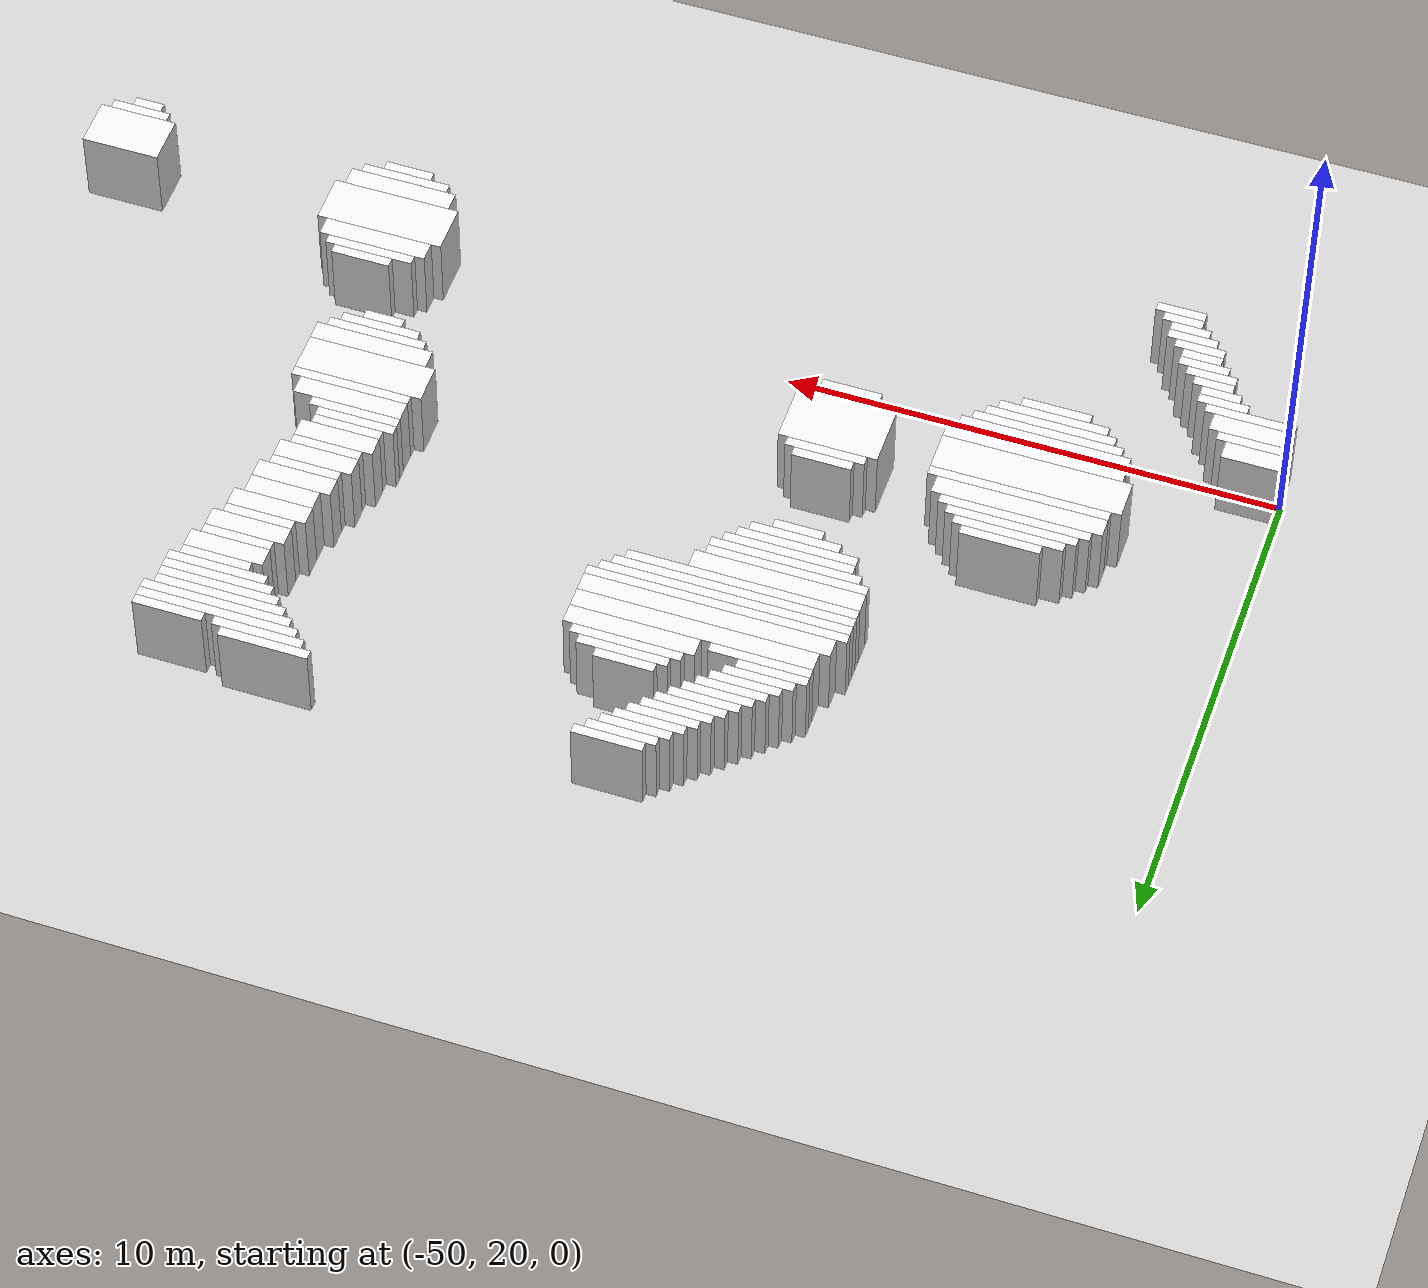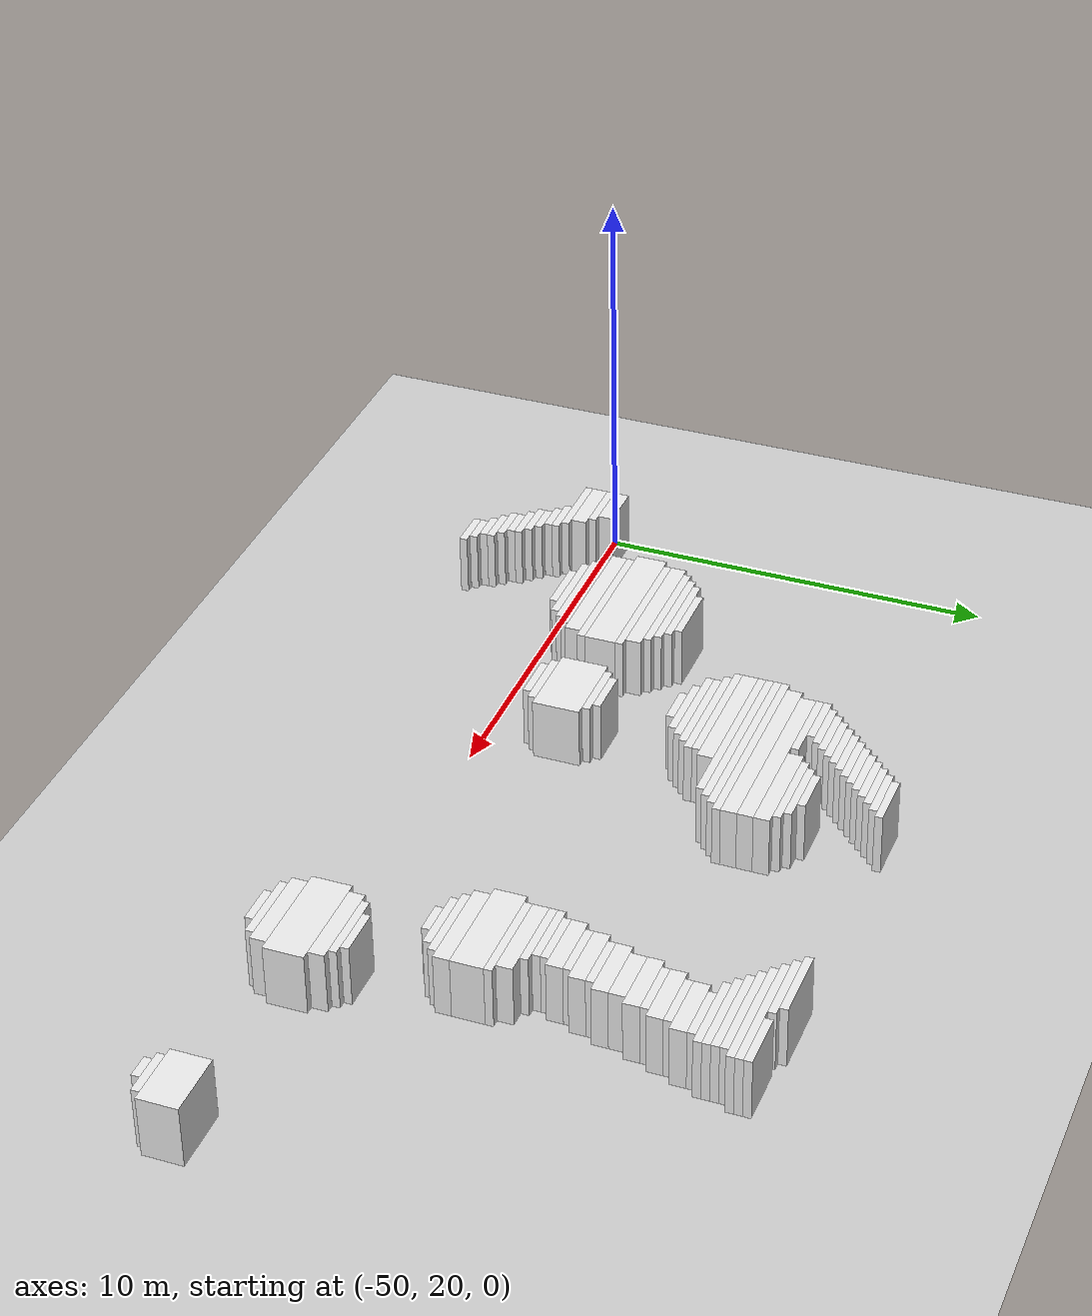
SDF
<sdf version="1.7">
 <world name="default">
  <model name="ground_plane">
   <static>1</static>
   <link name="link">
    <collision name="collision">
     <geometry><plane><normal>0 0 1</normal><size>120 120</size></plane></geometry>
    </collision>
    <visual name="visual">
     <geometry><plane><normal>0 0 1</normal><size>120 120</size></plane></geometry>
     <material>
      <script><uri>file://media/materials/scripts/gazebo.material</uri><name>Gazebo/Grey</name></script>
     </material>
    </visual>
   </link>
  </model>
  <model name="random_complex_02_model">
   <static>1</static>
   <link name="obs_751">
    <pose>-39.9000 30.5000 0.8000 0 0 0</pose>
    <collision name="obs_751_col"><geometry><box><size>1.4000 0.2000 1.6000</size></box></geometry></collision>
    <visual name="obs_751_vis">
     <geometry><box><size>1.4000 0.2000 1.6000</size></box></geometry>
     <material>
      <script><uri>file://media/materials/scripts/gazebo.material</uri><name>Gazebo/White</name></script>
     </material>
    </visual>
   </link>
   <link name="obs_752">
    <pose>-33.1000 30.5000 0.8000 0 0 0</pose>
    <collision name="obs_752_col"><geometry><box><size>1.8000 0.2000 1.6000</size></box></geometry></collision>
    <visual name="obs_752_vis">
     <geometry><box><size>1.8000 0.2000 1.6000</size></box></geometry>
     <material>
      <script><uri>file://media/materials/scripts/gazebo.material</uri><name>Gazebo/White</name></script>
     </material>
    </visual>
   </link>
   <link name="obs_759">
    <pose>-40.1000 30.3000 0.8000 0 0 0</pose>
    <collision name="obs_759_col"><geometry><box><size>1.4000 0.2000 1.6000</size></box></geometry></collision>
    <visual name="obs_759_vis">
     <geometry><box><size>1.4000 0.2000 1.6000</size></box></geometry>
     <material>
      <script><uri>file://media/materials/scripts/gazebo.material</uri><name>Gazebo/White</name></script>
     </material>
    </visual>
   </link>
   <link name="obs_760">
    <pose>-32.9000 30.3000 0.8000 0 0 0</pose>
    <collision name="obs_760_col"><geometry><box><size>1.8000 0.2000 1.6000</size></box></geometry></collision>
    <visual name="obs_760_vis">
     <geometry><box><size>1.8000 0.2000 1.6000</size></box></geometry>
     <material>
      <script><uri>file://media/materials/scripts/gazebo.material</uri><name>Gazebo/White</name></script>
     </material>
    </visual>
   </link>
   <link name="obs_761">
    <pose>-31.1000 30.3000 0.8000 0 0 0</pose>
    <collision name="obs_761_col"><geometry><box><size>1.4000 0.2000 1.6000</size></box></geometry></collision>
    <visual name="obs_761_vis">
     <geometry><box><size>1.4000 0.2000 1.6000</size></box></geometry>
     <material>
      <script><uri>file://media/materials/scripts/gazebo.material</uri><name>Gazebo/White</name></script>
     </material>
    </visual>
   </link>
   <link name="obs_768">
    <pose>-40.3000 30.1000 0.8000 0 0 0</pose>
    <collision name="obs_768_col"><geometry><box><size>1.4000 0.2000 1.6000</size></box></geometry></collision>
    <visual name="obs_768_vis">
     <geometry><box><size>1.4000 0.2000 1.6000</size></box></geometry>
     <material>
      <script><uri>file://media/materials/scripts/gazebo.material</uri><name>Gazebo/White</name></script>
     </material>
    </visual>
   </link>
   <link name="obs_769">
    <pose>-32.0000 30.1000 0.8000 0 0 0</pose>
    <collision name="obs_769_col"><geometry><box><size>3.2000 0.2000 1.6000</size></box></geometry></collision>
    <visual name="obs_769_vis">
     <geometry><box><size>3.2000 0.2000 1.6000</size></box></geometry>
     <material>
      <script><uri>file://media/materials/scripts/gazebo.material</uri><name>Gazebo/White</name></script>
     </material>
    </visual>
   </link>
   <link name="obs_773">
    <pose>-40.5000 29.9000 0.8000 0 0 0</pose>
    <collision name="obs_773_col"><geometry><box><size>1.4000 0.2000 1.6000</size></box></geometry></collision>
    <visual name="obs_773_vis">
     <geometry><box><size>1.4000 0.2000 1.6000</size></box></geometry>
     <material>
      <script><uri>file://media/materials/scripts/gazebo.material</uri><name>Gazebo/White</name></script>
     </material>
    </visual>
   </link>
   <link name="obs_774">
    <pose>-31.9000 29.9000 0.8000 0 0 0</pose>
    <collision name="obs_774_col"><geometry><box><size>3.0000 0.2000 1.6000</size></box></geometry></collision>
    <visual name="obs_774_vis">
     <geometry><box><size>3.0000 0.2000 1.6000</size></box></geometry>
     <material>
      <script><uri>file://media/materials/scripts/gazebo.material</uri><name>Gazebo/White</name></script>
     </material>
    </visual>
   </link>
   <link name="obs_785">
    <pose>-40.7000 29.7000 0.8000 0 0 0</pose>
    <collision name="obs_785_col"><geometry><box><size>1.4000 0.2000 1.6000</size></box></geometry></collision>
    <visual name="obs_785_vis">
     <geometry><box><size>1.4000 0.2000 1.6000</size></box></geometry>
     <material>
      <script><uri>file://media/materials/scripts/gazebo.material</uri><name>Gazebo/White</name></script>
     </material>
    </visual>
   </link>
   <link name="obs_786">
    <pose>-31.9000 29.7000 0.8000 0 0 0</pose>
    <collision name="obs_786_col"><geometry><box><size>2.6000 0.2000 1.6000</size></box></geometry></collision>
    <visual name="obs_786_vis">
     <geometry><box><size>2.6000 0.2000 1.6000</size></box></geometry>
     <material>
      <script><uri>file://media/materials/scripts/gazebo.material</uri><name>Gazebo/White</name></script>
     </material>
    </visual>
   </link>
   <link name="obs_793">
    <pose>-40.9000 29.5000 0.8000 0 0 0</pose>
    <collision name="obs_793_col"><geometry><box><size>1.4000 0.2000 1.6000</size></box></geometry></collision>
    <visual name="obs_793_vis">
     <geometry><box><size>1.4000 0.2000 1.6000</size></box></geometry>
     <material>
      <script><uri>file://media/materials/scripts/gazebo.material</uri><name>Gazebo/White</name></script>
     </material>
    </visual>
   </link>
   <link name="obs_794">
    <pose>-31.8000 29.5000 0.8000 0 0 0</pose>
    <collision name="obs_794_col"><geometry><box><size>2.4000 0.2000 1.6000</size></box></geometry></collision>
    <visual name="obs_794_vis">
     <geometry><box><size>2.4000 0.2000 1.6000</size></box></geometry>
     <material>
      <script><uri>file://media/materials/scripts/gazebo.material</uri><name>Gazebo/White</name></script>
     </material>
    </visual>
   </link>
   <link name="obs_801">
    <pose>-41.1000 29.3000 0.8000 0 0 0</pose>
    <collision name="obs_801_col"><geometry><box><size>1.4000 0.2000 1.6000</size></box></geometry></collision>
    <visual name="obs_801_vis">
     <geometry><box><size>1.4000 0.2000 1.6000</size></box></geometry>
     <material>
      <script><uri>file://media/materials/scripts/gazebo.material</uri><name>Gazebo/White</name></script>
     </material>
    </visual>
   </link>
   <link name="obs_802">
    <pose>-31.7000 29.3000 0.8000 0 0 0</pose>
    <collision name="obs_802_col"><geometry><box><size>2.2000 0.2000 1.6000</size></box></geometry></collision>
    <visual name="obs_802_vis">
     <geometry><box><size>2.2000 0.2000 1.6000</size></box></geometry>
     <material>
      <script><uri>file://media/materials/scripts/gazebo.material</uri><name>Gazebo/White</name></script>
     </material>
    </visual>
   </link>
   <link name="obs_809">
    <pose>-41.3000 29.1000 0.8000 0 0 0</pose>
    <collision name="obs_809_col"><geometry><box><size>1.4000 0.2000 1.6000</size></box></geometry></collision>
    <visual name="obs_809_vis">
     <geometry><box><size>1.4000 0.2000 1.6000</size></box></geometry>
     <material>
      <script><uri>file://media/materials/scripts/gazebo.material</uri><name>Gazebo/White</name></script>
     </material>
    </visual>
   </link>
   <link name="obs_810">
    <pose>-31.6000 29.1000 0.8000 0 0 0</pose>
    <collision name="obs_810_col"><geometry><box><size>2.0000 0.2000 1.6000</size></box></geometry></collision>
    <visual name="obs_810_vis">
     <geometry><box><size>2.0000 0.2000 1.6000</size></box></geometry>
     <material>
      <script><uri>file://media/materials/scripts/gazebo.material</uri><name>Gazebo/White</name></script>
     </material>
    </visual>
   </link>
   <link name="obs_815">
    <pose>-41.5000 28.9000 0.8000 0 0 0</pose>
    <collision name="obs_815_col"><geometry><box><size>1.4000 0.2000 1.6000</size></box></geometry></collision>
    <visual name="obs_815_vis">
     <geometry><box><size>1.4000 0.2000 1.6000</size></box></geometry>
     <material>
      <script><uri>file://media/materials/scripts/gazebo.material</uri><name>Gazebo/White</name></script>
     </material>
    </visual>
   </link>
   <link name="obs_816">
    <pose>-31.5000 28.9000 0.8000 0 0 0</pose>
    <collision name="obs_816_col"><geometry><box><size>1.4000 0.2000 1.6000</size></box></geometry></collision>
    <visual name="obs_816_vis">
     <geometry><box><size>1.4000 0.2000 1.6000</size></box></geometry>
     <material>
      <script><uri>file://media/materials/scripts/gazebo.material</uri><name>Gazebo/White</name></script>
     </material>
    </visual>
   </link>
   <link name="obs_826">
    <pose>-41.7000 28.7000 0.8000 0 0 0</pose>
    <collision name="obs_826_col"><geometry><box><size>1.4000 0.2000 1.6000</size></box></geometry></collision>
    <visual name="obs_826_vis">
     <geometry><box><size>1.4000 0.2000 1.6000</size></box></geometry>
     <material>
      <script><uri>file://media/materials/scripts/gazebo.material</uri><name>Gazebo/White</name></script>
     </material>
    </visual>
   </link>
   <link name="obs_827">
    <pose>-39.6000 28.7000 0.8000 0 0 0</pose>
    <collision name="obs_827_col"><geometry><box><size>1.2000 0.2000 1.6000</size></box></geometry></collision>
    <visual name="obs_827_vis">
     <geometry><box><size>1.2000 0.2000 1.6000</size></box></geometry>
     <material>
      <script><uri>file://media/materials/scripts/gazebo.material</uri><name>Gazebo/White</name></script>
     </material>
    </visual>
   </link>
   <link name="obs_836">
    <pose>-31.6000 28.6000 0.8000 0 0 0</pose>
    <collision name="obs_836_col"><geometry><box><size>1.6000 0.4000 1.6000</size></box></geometry></collision>
    <visual name="obs_836_vis">
     <geometry><box><size>1.6000 0.4000 1.6000</size></box></geometry>
     <material>
      <script><uri>file://media/materials/scripts/gazebo.material</uri><name>Gazebo/White</name></script>
     </material>
    </visual>
   </link>
   <link name="obs_838">
    <pose>-41.9000 28.5000 0.8000 0 0 0</pose>
    <collision name="obs_838_col"><geometry><box><size>1.4000 0.2000 1.6000</size></box></geometry></collision>
    <visual name="obs_838_vis">
     <geometry><box><size>1.4000 0.2000 1.6000</size></box></geometry>
     <material>
      <script><uri>file://media/materials/scripts/gazebo.material</uri><name>Gazebo/White</name></script>
     </material>
    </visual>
   </link>
   <link name="obs_839">
    <pose>-39.5000 28.5000 0.8000 0 0 0</pose>
    <collision name="obs_839_col"><geometry><box><size>1.8000 0.2000 1.6000</size></box></geometry></collision>
    <visual name="obs_839_vis">
     <geometry><box><size>1.8000 0.2000 1.6000</size></box></geometry>
     <material>
      <script><uri>file://media/materials/scripts/gazebo.material</uri><name>Gazebo/White</name></script>
     </material>
    </visual>
   </link>
   <link name="obs_847">
    <pose>-42.1000 28.3000 0.8000 0 0 0</pose>
    <collision name="obs_847_col"><geometry><box><size>1.4000 0.2000 1.6000</size></box></geometry></collision>
    <visual name="obs_847_vis">
     <geometry><box><size>1.4000 0.2000 1.6000</size></box></geometry>
     <material>
      <script><uri>file://media/materials/scripts/gazebo.material</uri><name>Gazebo/White</name></script>
     </material>
    </visual>
   </link>
   <link name="obs_848">
    <pose>-39.5000 28.3000 0.8000 0 0 0</pose>
    <collision name="obs_848_col"><geometry><box><size>2.2000 0.2000 1.6000</size></box></geometry></collision>
    <visual name="obs_848_vis">
     <geometry><box><size>2.2000 0.2000 1.6000</size></box></geometry>
     <material>
      <script><uri>file://media/materials/scripts/gazebo.material</uri><name>Gazebo/White</name></script>
     </material>
    </visual>
   </link>
   <link name="obs_849">
    <pose>-31.7000 28.3000 0.8000 0 0 0</pose>
    <collision name="obs_849_col"><geometry><box><size>1.4000 0.2000 1.6000</size></box></geometry></collision>
    <visual name="obs_849_vis">
     <geometry><box><size>1.4000 0.2000 1.6000</size></box></geometry>
     <material>
      <script><uri>file://media/materials/scripts/gazebo.material</uri><name>Gazebo/White</name></script>
     </material>
    </visual>
   </link>
   <link name="obs_858">
    <pose>-42.3000 28.1000 0.8000 0 0 0</pose>
    <collision name="obs_858_col"><geometry><box><size>1.4000 0.2000 1.6000</size></box></geometry></collision>
    <visual name="obs_858_vis">
     <geometry><box><size>1.4000 0.2000 1.6000</size></box></geometry>
     <material>
      <script><uri>file://media/materials/scripts/gazebo.material</uri><name>Gazebo/White</name></script>
     </material>
    </visual>
   </link>
   <link name="obs_865">
    <pose>-39.5000 28.0000 0.8000 0 0 0</pose>
    <collision name="obs_865_col"><geometry><box><size>2.6000 0.4000 1.6000</size></box></geometry></collision>
    <visual name="obs_865_vis">
     <geometry><box><size>2.6000 0.4000 1.6000</size></box></geometry>
     <material>
      <script><uri>file://media/materials/scripts/gazebo.material</uri><name>Gazebo/White</name></script>
     </material>
    </visual>
   </link>
   <link name="obs_866">
    <pose>-31.8000 28.0000 0.8000 0 0 0</pose>
    <collision name="obs_866_col"><geometry><box><size>1.6000 0.4000 1.6000</size></box></geometry></collision>
    <visual name="obs_866_vis">
     <geometry><box><size>1.6000 0.4000 1.6000</size></box></geometry>
     <material>
      <script><uri>file://media/materials/scripts/gazebo.material</uri><name>Gazebo/White</name></script>
     </material>
    </visual>
   </link>
   <link name="obs_868">
    <pose>-42.0000 27.9000 0.8000 0 0 0</pose>
    <collision name="obs_868_col"><geometry><box><size>2.0000 0.2000 1.6000</size></box></geometry></collision>
    <visual name="obs_868_vis">
     <geometry><box><size>2.0000 0.2000 1.6000</size></box></geometry>
     <material>
      <script><uri>file://media/materials/scripts/gazebo.material</uri><name>Gazebo/White</name></script>
     </material>
    </visual>
   </link>
   <link name="obs_878">
    <pose>-31.9000 27.7000 0.8000 0 0 0</pose>
    <collision name="obs_878_col"><geometry><box><size>1.4000 0.2000 1.6000</size></box></geometry></collision>
    <visual name="obs_878_vis">
     <geometry><box><size>1.4000 0.2000 1.6000</size></box></geometry>
     <material>
      <script><uri>file://media/materials/scripts/gazebo.material</uri><name>Gazebo/White</name></script>
     </material>
    </visual>
   </link>
   <link name="obs_886">
    <pose>-40.6000 27.6000 0.8000 0 0 0</pose>
    <collision name="obs_886_col"><geometry><box><size>4.8000 0.4000 1.6000</size></box></geometry></collision>
    <visual name="obs_886_vis">
     <geometry><box><size>4.8000 0.4000 1.6000</size></box></geometry>
     <material>
      <script><uri>file://media/materials/scripts/gazebo.material</uri><name>Gazebo/White</name></script>
     </material>
    </visual>
   </link>
   <link name="obs_892">
    <pose>-32.0000 27.4000 0.8000 0 0 0</pose>
    <collision name="obs_892_col"><geometry><box><size>1.6000 0.4000 1.6000</size></box></geometry></collision>
    <visual name="obs_892_vis">
     <geometry><box><size>1.6000 0.4000 1.6000</size></box></geometry>
     <material>
      <script><uri>file://media/materials/scripts/gazebo.material</uri><name>Gazebo/White</name></script>
     </material>
    </visual>
   </link>
   <link name="obs_898">
    <pose>-40.7000 27.2000 0.8000 0 0 0</pose>
    <collision name="obs_898_col"><geometry><box><size>5.0000 0.4000 1.6000</size></box></geometry></collision>
    <visual name="obs_898_vis">
     <geometry><box><size>5.0000 0.4000 1.6000</size></box></geometry>
     <material>
      <script><uri>file://media/materials/scripts/gazebo.material</uri><name>Gazebo/White</name></script>
     </material>
    </visual>
   </link>
   <link name="obs_905">
    <pose>-32.1000 27.0000 0.8000 0 0 0</pose>
    <collision name="obs_905_col"><geometry><box><size>1.4000 0.4000 1.6000</size></box></geometry></collision>
    <visual name="obs_905_vis">
     <geometry><box><size>1.4000 0.4000 1.6000</size></box></geometry>
     <material>
      <script><uri>file://media/materials/scripts/gazebo.material</uri><name>Gazebo/White</name></script>
     </material>
    </visual>
   </link>
   <link name="obs_908">
    <pose>-40.8000 26.9000 0.8000 0 0 0</pose>
    <collision name="obs_908_col"><geometry><box><size>5.2000 0.2000 1.6000</size></box></geometry></collision>
    <visual name="obs_908_vis">
     <geometry><box><size>5.2000 0.2000 1.6000</size></box></geometry>
     <material>
      <script><uri>file://media/materials/scripts/gazebo.material</uri><name>Gazebo/White</name></script>
     </material>
    </visual>
   </link>
   <link name="obs_915">
    <pose>-40.9000 26.7000 0.8000 0 0 0</pose>
    <collision name="obs_915_col"><geometry><box><size>5.0000 0.2000 1.6000</size></box></geometry></collision>
    <visual name="obs_915_vis">
     <geometry><box><size>5.0000 0.2000 1.6000</size></box></geometry>
     <material>
      <script><uri>file://media/materials/scripts/gazebo.material</uri><name>Gazebo/White</name></script>
     </material>
    </visual>
   </link>
   <link name="obs_921">
    <pose>-32.2000 26.6000 0.8000 0 0 0</pose>
    <collision name="obs_921_col"><geometry><box><size>1.6000 0.4000 1.6000</size></box></geometry></collision>
    <visual name="obs_921_vis">
     <geometry><box><size>1.6000 0.4000 1.6000</size></box></geometry>
     <material>
      <script><uri>file://media/materials/scripts/gazebo.material</uri><name>Gazebo/White</name></script>
     </material>
    </visual>
   </link>
   <link name="obs_923">
    <pose>-41.0000 26.5000 0.8000 0 0 0</pose>
    <collision name="obs_923_col"><geometry><box><size>4.8000 0.2000 1.6000</size></box></geometry></collision>
    <visual name="obs_923_vis">
     <geometry><box><size>4.8000 0.2000 1.6000</size></box></geometry>
     <material>
      <script><uri>file://media/materials/scripts/gazebo.material</uri><name>Gazebo/White</name></script>
     </material>
    </visual>
   </link>
   <link name="obs_929">
    <pose>-41.1000 26.3000 0.8000 0 0 0</pose>
    <collision name="obs_929_col"><geometry><box><size>4.6000 0.2000 1.6000</size></box></geometry></collision>
    <visual name="obs_929_vis">
     <geometry><box><size>4.6000 0.2000 1.6000</size></box></geometry>
     <material>
      <script><uri>file://media/materials/scripts/gazebo.material</uri><name>Gazebo/White</name></script>
     </material>
    </visual>
   </link>
   <link name="obs_930">
    <pose>-32.3000 26.3000 0.8000 0 0 0</pose>
    <collision name="obs_930_col"><geometry><box><size>1.4000 0.2000 1.6000</size></box></geometry></collision>
    <visual name="obs_930_vis">
     <geometry><box><size>1.4000 0.2000 1.6000</size></box></geometry>
     <material>
      <script><uri>file://media/materials/scripts/gazebo.material</uri><name>Gazebo/White</name></script>
     </material>
    </visual>
   </link>
   <link name="obs_943">
    <pose>-41.7000 26.0000 0.8000 0 0 0</pose>
    <collision name="obs_943_col"><geometry><box><size>3.4000 0.4000 1.6000</size></box></geometry></collision>
    <visual name="obs_943_vis">
     <geometry><box><size>3.4000 0.4000 1.6000</size></box></geometry>
     <material>
      <script><uri>file://media/materials/scripts/gazebo.material</uri><name>Gazebo/White</name></script>
     </material>
    </visual>
   </link>
   <link name="obs_944">
    <pose>-32.4000 26.0000 0.8000 0 0 0</pose>
    <collision name="obs_944_col"><geometry><box><size>1.6000 0.4000 1.6000</size></box></geometry></collision>
    <visual name="obs_944_vis">
     <geometry><box><size>1.6000 0.4000 1.6000</size></box></geometry>
     <material>
      <script><uri>file://media/materials/scripts/gazebo.material</uri><name>Gazebo/White</name></script>
     </material>
    </visual>
   </link>
   <link name="obs_954">
    <pose>-41.8000 25.7000 0.8000 0 0 0</pose>
    <collision name="obs_954_col"><geometry><box><size>3.2000 0.2000 1.6000</size></box></geometry></collision>
    <visual name="obs_954_vis">
     <geometry><box><size>3.2000 0.2000 1.6000</size></box></geometry>
     <material>
      <script><uri>file://media/materials/scripts/gazebo.material</uri><name>Gazebo/White</name></script>
     </material>
    </visual>
   </link>
   <link name="obs_955">
    <pose>-32.5000 25.7000 0.8000 0 0 0</pose>
    <collision name="obs_955_col"><geometry><box><size>1.4000 0.2000 1.6000</size></box></geometry></collision>
    <visual name="obs_955_vis">
     <geometry><box><size>1.4000 0.2000 1.6000</size></box></geometry>
     <material>
      <script><uri>file://media/materials/scripts/gazebo.material</uri><name>Gazebo/White</name></script>
     </material>
    </visual>
   </link>
   <link name="obs_962">
    <pose>-41.7000 25.5000 0.8000 0 0 0</pose>
    <collision name="obs_962_col"><geometry><box><size>3.0000 0.2000 1.6000</size></box></geometry></collision>
    <visual name="obs_962_vis">
     <geometry><box><size>3.0000 0.2000 1.6000</size></box></geometry>
     <material>
      <script><uri>file://media/materials/scripts/gazebo.material</uri><name>Gazebo/White</name></script>
     </material>
    </visual>
   </link>
   <link name="obs_971">
    <pose>-32.6000 25.4000 0.8000 0 0 0</pose>
    <collision name="obs_971_col"><geometry><box><size>1.6000 0.4000 1.6000</size></box></geometry></collision>
    <visual name="obs_971_vis">
     <geometry><box><size>1.6000 0.4000 1.6000</size></box></geometry>
     <material>
      <script><uri>file://media/materials/scripts/gazebo.material</uri><name>Gazebo/White</name></script>
     </material>
    </visual>
   </link>
   <link name="obs_972">
    <pose>-41.7000 25.3000 0.8000 0 0 0</pose>
    <collision name="obs_972_col"><geometry><box><size>2.6000 0.2000 1.6000</size></box></geometry></collision>
    <visual name="obs_972_vis">
     <geometry><box><size>2.6000 0.2000 1.6000</size></box></geometry>
     <material>
      <script><uri>file://media/materials/scripts/gazebo.material</uri><name>Gazebo/White</name></script>
     </material>
    </visual>
   </link>
   <link name="obs_978">
    <pose>-41.8000 25.1000 0.8000 0 0 0</pose>
    <collision name="obs_978_col"><geometry><box><size>2.4000 0.2000 1.6000</size></box></geometry></collision>
    <visual name="obs_978_vis">
     <geometry><box><size>2.4000 0.2000 1.6000</size></box></geometry>
     <material>
      <script><uri>file://media/materials/scripts/gazebo.material</uri><name>Gazebo/White</name></script>
     </material>
    </visual>
   </link>
   <link name="obs_979">
    <pose>-32.7000 25.1000 0.8000 0 0 0</pose>
    <collision name="obs_979_col"><geometry><box><size>1.4000 0.2000 1.6000</size></box></geometry></collision>
    <visual name="obs_979_vis">
     <geometry><box><size>1.4000 0.2000 1.6000</size></box></geometry>
     <material>
      <script><uri>file://media/materials/scripts/gazebo.material</uri><name>Gazebo/White</name></script>
     </material>
    </visual>
   </link>
   <link name="obs_985">
    <pose>-41.7000 24.9000 0.8000 0 0 0</pose>
    <collision name="obs_985_col"><geometry><box><size>1.8000 0.2000 1.6000</size></box></geometry></collision>
    <visual name="obs_985_vis">
     <geometry><box><size>1.8000 0.2000 1.6000</size></box></geometry>
     <material>
      <script><uri>file://media/materials/scripts/gazebo.material</uri><name>Gazebo/White</name></script>
     </material>
    </visual>
   </link>
   <link name="obs_986">
    <pose>-32.8000 24.9000 0.8000 0 0 0</pose>
    <collision name="obs_986_col"><geometry><box><size>1.6000 0.2000 1.6000</size></box></geometry></collision>
    <visual name="obs_986_vis">
     <geometry><box><size>1.6000 0.2000 1.6000</size></box></geometry>
     <material>
      <script><uri>file://media/materials/scripts/gazebo.material</uri><name>Gazebo/White</name></script>
     </material>
    </visual>
   </link>
   <link name="obs_996">
    <pose>-41.7000 24.7000 0.8000 0 0 0</pose>
    <collision name="obs_996_col"><geometry><box><size>1.0000 0.2000 1.6000</size></box></geometry></collision>
    <visual name="obs_996_vis">
     <geometry><box><size>1.0000 0.2000 1.6000</size></box></geometry>
     <material>
      <script><uri>file://media/materials/scripts/gazebo.material</uri><name>Gazebo/White</name></script>
     </material>
    </visual>
   </link>
   <link name="obs_997">
    <pose>-32.7000 24.7000 0.8000 0 0 0</pose>
    <collision name="obs_997_col"><geometry><box><size>1.8000 0.2000 1.6000</size></box></geometry></collision>
    <visual name="obs_997_vis">
     <geometry><box><size>1.8000 0.2000 1.6000</size></box></geometry>
     <material>
      <script><uri>file://media/materials/scripts/gazebo.material</uri><name>Gazebo/White</name></script>
     </material>
    </visual>
   </link>
   <link name="obs_1020">
    <pose>-32.5000 24.4000 0.8000 0 0 0</pose>
    <collision name="obs_1020_col"><geometry><box><size>2.2000 0.4000 1.6000</size></box></geometry></collision>
    <visual name="obs_1020_vis">
     <geometry><box><size>2.2000 0.4000 1.6000</size></box></geometry>
     <material>
      <script><uri>file://media/materials/scripts/gazebo.material</uri><name>Gazebo/White</name></script>
     </material>
    </visual>
   </link>
   <link name="obs_1035">
    <pose>-32.4000 24.1000 0.8000 0 0 0</pose>
    <collision name="obs_1035_col"><geometry><box><size>2.4000 0.2000 1.6000</size></box></geometry></collision>
    <visual name="obs_1035_vis">
     <geometry><box><size>2.4000 0.2000 1.6000</size></box></geometry>
     <material>
      <script><uri>file://media/materials/scripts/gazebo.material</uri><name>Gazebo/White</name></script>
     </material>
    </visual>
   </link>
   <link name="obs_1058">
    <pose>-45.4000 23.7000 0.8000 0 0 0</pose>
    <collision name="obs_1058_col"><geometry><box><size>1.6000 0.2000 1.6000</size></box></geometry></collision>
    <visual name="obs_1058_vis">
     <geometry><box><size>1.6000 0.2000 1.6000</size></box></geometry>
     <material>
      <script><uri>file://media/materials/scripts/gazebo.material</uri><name>Gazebo/White</name></script>
     </material>
    </visual>
   </link>
   <link name="obs_1070">
    <pose>-45.5000 23.5000 0.8000 0 0 0</pose>
    <collision name="obs_1070_col"><geometry><box><size>2.2000 0.2000 1.6000</size></box></geometry></collision>
    <visual name="obs_1070_vis">
     <geometry><box><size>2.2000 0.2000 1.6000</size></box></geometry>
     <material>
      <script><uri>file://media/materials/scripts/gazebo.material</uri><name>Gazebo/White</name></script>
     </material>
    </visual>
   </link>
   <link name="obs_1077">
    <pose>-32.5000 23.6000 0.8000 0 0 0</pose>
    <collision name="obs_1077_col"><geometry><box><size>2.6000 0.8000 1.6000</size></box></geometry></collision>
    <visual name="obs_1077_vis">
     <geometry><box><size>2.6000 0.8000 1.6000</size></box></geometry>
     <material>
      <script><uri>file://media/materials/scripts/gazebo.material</uri><name>Gazebo/White</name></script>
     </material>
    </visual>
   </link>
   <link name="obs_1079">
    <pose>-45.5000 23.3000 0.8000 0 0 0</pose>
    <collision name="obs_1079_col"><geometry><box><size>2.6000 0.2000 1.6000</size></box></geometry></collision>
    <visual name="obs_1079_vis">
     <geometry><box><size>2.6000 0.2000 1.6000</size></box></geometry>
     <material>
      <script><uri>file://media/materials/scripts/gazebo.material</uri><name>Gazebo/White</name></script>
     </material>
    </visual>
   </link>
   <link name="obs_1088">
    <pose>-45.5000 23.1000 0.8000 0 0 0</pose>
    <collision name="obs_1088_col"><geometry><box><size>3.0000 0.2000 1.6000</size></box></geometry></collision>
    <visual name="obs_1088_vis">
     <geometry><box><size>3.0000 0.2000 1.6000</size></box></geometry>
     <material>
      <script><uri>file://media/materials/scripts/gazebo.material</uri><name>Gazebo/White</name></script>
     </material>
    </visual>
   </link>
   <link name="obs_1094">
    <pose>-32.4000 23.0000 0.8000 0 0 0</pose>
    <collision name="obs_1094_col"><geometry><box><size>2.4000 0.4000 1.6000</size></box></geometry></collision>
    <visual name="obs_1094_vis">
     <geometry><box><size>2.4000 0.4000 1.6000</size></box></geometry>
     <material>
      <script><uri>file://media/materials/scripts/gazebo.material</uri><name>Gazebo/White</name></script>
     </material>
    </visual>
   </link>
   <link name="obs_1097">
    <pose>-41.6000 22.9000 0.8000 0 0 0</pose>
    <collision name="obs_1097_col"><geometry><box><size>1.2000 0.2000 1.6000</size></box></geometry></collision>
    <visual name="obs_1097_vis">
     <geometry><box><size>1.2000 0.2000 1.6000</size></box></geometry>
     <material>
      <script><uri>file://media/materials/scripts/gazebo.material</uri><name>Gazebo/White</name></script>
     </material>
    </visual>
   </link>
   <link name="obs_1105">
    <pose>-45.5000 22.8000 0.8000 0 0 0</pose>
    <collision name="obs_1105_col"><geometry><box><size>3.4000 0.4000 1.6000</size></box></geometry></collision>
    <visual name="obs_1105_vis">
     <geometry><box><size>3.4000 0.4000 1.6000</size></box></geometry>
     <material>
      <script><uri>file://media/materials/scripts/gazebo.material</uri><name>Gazebo/White</name></script>
     </material>
    </visual>
   </link>
   <link name="obs_1107">
    <pose>-41.6000 22.7000 0.8000 0 0 0</pose>
    <collision name="obs_1107_col"><geometry><box><size>1.6000 0.2000 1.6000</size></box></geometry></collision>
    <visual name="obs_1107_vis">
     <geometry><box><size>1.6000 0.2000 1.6000</size></box></geometry>
     <material>
      <script><uri>file://media/materials/scripts/gazebo.material</uri><name>Gazebo/White</name></script>
     </material>
    </visual>
   </link>
   <link name="obs_1108">
    <pose>-32.4000 22.7000 0.8000 0 0 0</pose>
    <collision name="obs_1108_col"><geometry><box><size>2.0000 0.2000 1.6000</size></box></geometry></collision>
    <visual name="obs_1108_vis">
     <geometry><box><size>2.0000 0.2000 1.6000</size></box></geometry>
     <material>
      <script><uri>file://media/materials/scripts/gazebo.material</uri><name>Gazebo/White</name></script>
     </material>
    </visual>
   </link>
   <link name="obs_1117">
    <pose>-45.4000 22.5000 0.8000 0 0 0</pose>
    <collision name="obs_1117_col"><geometry><box><size>3.6000 0.2000 1.6000</size></box></geometry></collision>
    <visual name="obs_1117_vis">
     <geometry><box><size>3.6000 0.2000 1.6000</size></box></geometry>
     <material>
      <script><uri>file://media/materials/scripts/gazebo.material</uri><name>Gazebo/White</name></script>
     </material>
    </visual>
   </link>
   <link name="obs_1118">
    <pose>-32.4000 22.5000 0.8000 0 0 0</pose>
    <collision name="obs_1118_col"><geometry><box><size>1.6000 0.2000 1.6000</size></box></geometry></collision>
    <visual name="obs_1118_vis">
     <geometry><box><size>1.6000 0.2000 1.6000</size></box></geometry>
     <material>
      <script><uri>file://media/materials/scripts/gazebo.material</uri><name>Gazebo/White</name></script>
     </material>
    </visual>
   </link>
   <link name="obs_1125">
    <pose>-32.4000 22.3000 0.8000 0 0 0</pose>
    <collision name="obs_1125_col"><geometry><box><size>0.8000 0.2000 1.6000</size></box></geometry></collision>
    <visual name="obs_1125_vis">
     <geometry><box><size>0.8000 0.2000 1.6000</size></box></geometry>
     <material>
      <script><uri>file://media/materials/scripts/gazebo.material</uri><name>Gazebo/White</name></script>
     </material>
    </visual>
   </link>
   <link name="obs_1145">
    <pose>-45.5000 22.0000 0.8000 0 0 0</pose>
    <collision name="obs_1145_col"><geometry><box><size>3.8000 0.8000 1.6000</size></box></geometry></collision>
    <visual name="obs_1145_vis">
     <geometry><box><size>3.8000 0.8000 1.6000</size></box></geometry>
     <material>
      <script><uri>file://media/materials/scripts/gazebo.material</uri><name>Gazebo/White</name></script>
     </material>
    </visual>
   </link>
   <link name="obs_1154">
    <pose>-41.6000 22.0000 0.8000 0 0 0</pose>
    <collision name="obs_1154_col"><geometry><box><size>2.0000 1.2000 1.6000</size></box></geometry></collision>
    <visual name="obs_1154_vis">
     <geometry><box><size>2.0000 1.2000 1.6000</size></box></geometry>
     <material>
      <script><uri>file://media/materials/scripts/gazebo.material</uri><name>Gazebo/White</name></script>
     </material>
    </visual>
   </link>
   <link name="obs_1157">
    <pose>-45.4000 21.5000 0.8000 0 0 0</pose>
    <collision name="obs_1157_col"><geometry><box><size>3.6000 0.2000 1.6000</size></box></geometry></collision>
    <visual name="obs_1157_vis">
     <geometry><box><size>3.6000 0.2000 1.6000</size></box></geometry>
     <material>
      <script><uri>file://media/materials/scripts/gazebo.material</uri><name>Gazebo/White</name></script>
     </material>
    </visual>
   </link>
   <link name="obs_1164">
    <pose>-41.6000 21.3000 0.8000 0 0 0</pose>
    <collision name="obs_1164_col"><geometry><box><size>1.6000 0.2000 1.6000</size></box></geometry></collision>
    <visual name="obs_1164_vis">
     <geometry><box><size>1.6000 0.2000 1.6000</size></box></geometry>
     <material>
      <script><uri>file://media/materials/scripts/gazebo.material</uri><name>Gazebo/White</name></script>
     </material>
    </visual>
   </link>
   <link name="obs_1172">
    <pose>-45.5000 21.2000 0.8000 0 0 0</pose>
    <collision name="obs_1172_col"><geometry><box><size>3.4000 0.4000 1.6000</size></box></geometry></collision>
    <visual name="obs_1172_vis">
     <geometry><box><size>3.4000 0.4000 1.6000</size></box></geometry>
     <material>
      <script><uri>file://media/materials/scripts/gazebo.material</uri><name>Gazebo/White</name></script>
     </material>
    </visual>
   </link>
   <link name="obs_1175">
    <pose>-41.6000 21.1000 0.8000 0 0 0</pose>
    <collision name="obs_1175_col"><geometry><box><size>1.2000 0.2000 1.6000</size></box></geometry></collision>
    <visual name="obs_1175_vis">
     <geometry><box><size>1.2000 0.2000 1.6000</size></box></geometry>
     <material>
      <script><uri>file://media/materials/scripts/gazebo.material</uri><name>Gazebo/White</name></script>
     </material>
    </visual>
   </link>
   <link name="obs_1183">
    <pose>-45.5000 20.9000 0.8000 0 0 0</pose>
    <collision name="obs_1183_col"><geometry><box><size>3.0000 0.2000 1.6000</size></box></geometry></collision>
    <visual name="obs_1183_vis">
     <geometry><box><size>3.0000 0.2000 1.6000</size></box></geometry>
     <material>
      <script><uri>file://media/materials/scripts/gazebo.material</uri><name>Gazebo/White</name></script>
     </material>
    </visual>
   </link>
   <link name="obs_1184">
    <pose>-31.4000 20.9000 0.8000 0 0 0</pose>
    <collision name="obs_1184_col"><geometry><box><size>1.2000 0.2000 1.6000</size></box></geometry></collision>
    <visual name="obs_1184_vis">
     <geometry><box><size>1.2000 0.2000 1.6000</size></box></geometry>
     <material>
      <script><uri>file://media/materials/scripts/gazebo.material</uri><name>Gazebo/White</name></script>
     </material>
    </visual>
   </link>
   <link name="obs_1193">
    <pose>-45.5000 20.7000 0.8000 0 0 0</pose>
    <collision name="obs_1193_col"><geometry><box><size>2.6000 0.2000 1.6000</size></box></geometry></collision>
    <visual name="obs_1193_vis">
     <geometry><box><size>2.6000 0.2000 1.6000</size></box></geometry>
     <material>
      <script><uri>file://media/materials/scripts/gazebo.material</uri><name>Gazebo/White</name></script>
     </material>
    </visual>
   </link>
   <link name="obs_1194">
    <pose>-31.5000 20.7000 0.8000 0 0 0</pose>
    <collision name="obs_1194_col"><geometry><box><size>1.8000 0.2000 1.6000</size></box></geometry></collision>
    <visual name="obs_1194_vis">
     <geometry><box><size>1.8000 0.2000 1.6000</size></box></geometry>
     <material>
      <script><uri>file://media/materials/scripts/gazebo.material</uri><name>Gazebo/White</name></script>
     </material>
    </visual>
   </link>
   <link name="obs_1202">
    <pose>-45.5000 20.5000 0.8000 0 0 0</pose>
    <collision name="obs_1202_col"><geometry><box><size>2.2000 0.2000 1.6000</size></box></geometry></collision>
    <visual name="obs_1202_vis">
     <geometry><box><size>2.2000 0.2000 1.6000</size></box></geometry>
     <material>
      <script><uri>file://media/materials/scripts/gazebo.material</uri><name>Gazebo/White</name></script>
     </material>
    </visual>
   </link>
   <link name="obs_1211">
    <pose>-31.5000 20.4000 0.8000 0 0 0</pose>
    <collision name="obs_1211_col"><geometry><box><size>2.2000 0.4000 1.6000</size></box></geometry></collision>
    <visual name="obs_1211_vis">
     <geometry><box><size>2.2000 0.4000 1.6000</size></box></geometry>
     <material>
      <script><uri>file://media/materials/scripts/gazebo.material</uri><name>Gazebo/White</name></script>
     </material>
    </visual>
   </link>
   <link name="obs_1213">
    <pose>-45.5000 20.3000 0.8000 0 0 0</pose>
    <collision name="obs_1213_col"><geometry><box><size>1.4000 0.2000 1.6000</size></box></geometry></collision>
    <visual name="obs_1213_vis">
     <geometry><box><size>1.4000 0.2000 1.6000</size></box></geometry>
     <material>
      <script><uri>file://media/materials/scripts/gazebo.material</uri><name>Gazebo/White</name></script>
     </material>
    </visual>
   </link>
   <link name="obs_1219">
    <pose>-49.4000 20.2000 0.8000 0 0 0</pose>
    <collision name="obs_1219_col"><geometry><box><size>1.2000 0.4000 1.6000</size></box></geometry></collision>
    <visual name="obs_1219_vis">
     <geometry><box><size>1.2000 0.4000 1.6000</size></box></geometry>
     <material>
      <script><uri>file://media/materials/scripts/gazebo.material</uri><name>Gazebo/White</name></script>
     </material>
    </visual>
   </link>
   <link name="obs_1227">
    <pose>-49.3000 19.9000 0.8000 0 0 0</pose>
    <collision name="obs_1227_col"><geometry><box><size>1.4000 0.2000 1.6000</size></box></geometry></collision>
    <visual name="obs_1227_vis">
     <geometry><box><size>1.4000 0.2000 1.6000</size></box></geometry>
     <material>
      <script><uri>file://media/materials/scripts/gazebo.material</uri><name>Gazebo/White</name></script>
     </material>
    </visual>
   </link>
   <link name="obs_1238">
    <pose>-49.2000 19.6000 0.8000 0 0 0</pose>
    <collision name="obs_1238_col"><geometry><box><size>1.6000 0.4000 1.6000</size></box></geometry></collision>
    <visual name="obs_1238_vis">
     <geometry><box><size>1.6000 0.4000 1.6000</size></box></geometry>
     <material>
      <script><uri>file://media/materials/scripts/gazebo.material</uri><name>Gazebo/White</name></script>
     </material>
    </visual>
   </link>
   <link name="obs_1243">
    <pose>-31.5000 19.7000 0.8000 0 0 0</pose>
    <collision name="obs_1243_col"><geometry><box><size>2.6000 1.0000 1.6000</size></box></geometry></collision>
    <visual name="obs_1243_vis">
     <geometry><box><size>2.6000 1.0000 1.6000</size></box></geometry>
     <material>
      <script><uri>file://media/materials/scripts/gazebo.material</uri><name>Gazebo/White</name></script>
     </material>
    </visual>
   </link>
   <link name="obs_1246">
    <pose>-49.1000 19.3000 0.8000 0 0 0</pose>
    <collision name="obs_1246_col"><geometry><box><size>1.8000 0.2000 1.6000</size></box></geometry></collision>
    <visual name="obs_1246_vis">
     <geometry><box><size>1.8000 0.2000 1.6000</size></box></geometry>
     <material>
      <script><uri>file://media/materials/scripts/gazebo.material</uri><name>Gazebo/White</name></script>
     </material>
    </visual>
   </link>
   <link name="obs_1255">
    <pose>-48.5000 19.1000 0.8000 0 0 0</pose>
    <collision name="obs_1255_col"><geometry><box><size>1.0000 0.2000 1.6000</size></box></geometry></collision>
    <visual name="obs_1255_vis">
     <geometry><box><size>1.0000 0.2000 1.6000</size></box></geometry>
     <material>
      <script><uri>file://media/materials/scripts/gazebo.material</uri><name>Gazebo/White</name></script>
     </material>
    </visual>
   </link>
   <link name="obs_1262">
    <pose>-25.8000 19.3000 0.8000 0 0 0</pose>
    <collision name="obs_1262_col"><geometry><box><size>1.6000 1.0000 1.6000</size></box></geometry></collision>
    <visual name="obs_1262_vis">
     <geometry><box><size>1.6000 1.0000 1.6000</size></box></geometry>
     <material>
      <script><uri>file://media/materials/scripts/gazebo.material</uri><name>Gazebo/White</name></script>
     </material>
    </visual>
   </link>
   <link name="obs_1263">
    <pose>-31.5000 19.0000 0.8000 0 0 0</pose>
    <collision name="obs_1263_col"><geometry><box><size>2.2000 0.4000 1.6000</size></box></geometry></collision>
    <visual name="obs_1263_vis">
     <geometry><box><size>2.2000 0.4000 1.6000</size></box></geometry>
     <material>
      <script><uri>file://media/materials/scripts/gazebo.material</uri><name>Gazebo/White</name></script>
     </material>
    </visual>
   </link>
   <link name="obs_1264">
    <pose>-48.4000 18.9000 0.8000 0 0 0</pose>
    <collision name="obs_1264_col"><geometry><box><size>0.8000 0.2000 1.6000</size></box></geometry></collision>
    <visual name="obs_1264_vis">
     <geometry><box><size>0.8000 0.2000 1.6000</size></box></geometry>
     <material>
      <script><uri>file://media/materials/scripts/gazebo.material</uri><name>Gazebo/White</name></script>
     </material>
    </visual>
   </link>
   <link name="obs_1277">
    <pose>-48.2000 18.7000 0.8000 0 0 0</pose>
    <collision name="obs_1277_col"><geometry><box><size>0.8000 0.2000 1.6000</size></box></geometry></collision>
    <visual name="obs_1277_vis">
     <geometry><box><size>0.8000 0.2000 1.6000</size></box></geometry>
     <material>
      <script><uri>file://media/materials/scripts/gazebo.material</uri><name>Gazebo/White</name></script>
     </material>
    </visual>
   </link>
   <link name="obs_1278">
    <pose>-31.5000 18.7000 0.8000 0 0 0</pose>
    <collision name="obs_1278_col"><geometry><box><size>1.8000 0.2000 1.6000</size></box></geometry></collision>
    <visual name="obs_1278_vis">
     <geometry><box><size>1.8000 0.2000 1.6000</size></box></geometry>
     <material>
      <script><uri>file://media/materials/scripts/gazebo.material</uri><name>Gazebo/White</name></script>
     </material>
    </visual>
   </link>
   <link name="obs_1279">
    <pose>-25.8000 18.7000 0.8000 0 0 0</pose>
    <collision name="obs_1279_col"><geometry><box><size>1.2000 0.2000 1.6000</size></box></geometry></collision>
    <visual name="obs_1279_vis">
     <geometry><box><size>1.2000 0.2000 1.6000</size></box></geometry>
     <material>
      <script><uri>file://media/materials/scripts/gazebo.material</uri><name>Gazebo/White</name></script>
     </material>
    </visual>
   </link>
   <link name="obs_1286">
    <pose>-48.1000 18.5000 0.8000 0 0 0</pose>
    <collision name="obs_1286_col"><geometry><box><size>1.0000 0.2000 1.6000</size></box></geometry></collision>
    <visual name="obs_1286_vis">
     <geometry><box><size>1.0000 0.2000 1.6000</size></box></geometry>
     <material>
      <script><uri>file://media/materials/scripts/gazebo.material</uri><name>Gazebo/White</name></script>
     </material>
    </visual>
   </link>
   <link name="obs_1287">
    <pose>-31.5000 18.5000 0.8000 0 0 0</pose>
    <collision name="obs_1287_col"><geometry><box><size>1.0000 0.2000 1.6000</size></box></geometry></collision>
    <visual name="obs_1287_vis">
     <geometry><box><size>1.0000 0.2000 1.6000</size></box></geometry>
     <material>
      <script><uri>file://media/materials/scripts/gazebo.material</uri><name>Gazebo/White</name></script>
     </material>
    </visual>
   </link>
   <link name="obs_1288">
    <pose>-25.9000 18.5000 0.8000 0 0 0</pose>
    <collision name="obs_1288_col"><geometry><box><size>0.6000 0.2000 1.6000</size></box></geometry></collision>
    <visual name="obs_1288_vis">
     <geometry><box><size>0.6000 0.2000 1.6000</size></box></geometry>
     <material>
      <script><uri>file://media/materials/scripts/gazebo.material</uri><name>Gazebo/White</name></script>
     </material>
    </visual>
   </link>
   <link name="obs_1294">
    <pose>-47.9000 18.3000 0.8000 0 0 0</pose>
    <collision name="obs_1294_col"><geometry><box><size>1.0000 0.2000 1.6000</size></box></geometry></collision>
    <visual name="obs_1294_vis">
     <geometry><box><size>1.0000 0.2000 1.6000</size></box></geometry>
     <material>
      <script><uri>file://media/materials/scripts/gazebo.material</uri><name>Gazebo/White</name></script>
     </material>
    </visual>
   </link>
   <link name="obs_1299">
    <pose>-47.8000 18.1000 0.8000 0 0 0</pose>
    <collision name="obs_1299_col"><geometry><box><size>0.8000 0.2000 1.6000</size></box></geometry></collision>
    <visual name="obs_1299_vis">
     <geometry><box><size>0.8000 0.2000 1.6000</size></box></geometry>
     <material>
      <script><uri>file://media/materials/scripts/gazebo.material</uri><name>Gazebo/White</name></script>
     </material>
    </visual>
   </link>
   <link name="obs_1302">
    <pose>-47.7000 17.9000 0.8000 0 0 0</pose>
    <collision name="obs_1302_col"><geometry><box><size>1.0000 0.2000 1.6000</size></box></geometry></collision>
    <visual name="obs_1302_vis">
     <geometry><box><size>1.0000 0.2000 1.6000</size></box></geometry>
     <material>
      <script><uri>file://media/materials/scripts/gazebo.material</uri><name>Gazebo/White</name></script>
     </material>
    </visual>
   </link>
   <link name="obs_1304">
    <pose>-47.5000 17.7000 0.8000 0 0 0</pose>
    <collision name="obs_1304_col"><geometry><box><size>1.0000 0.2000 1.6000</size></box></geometry></collision>
    <visual name="obs_1304_vis">
     <geometry><box><size>1.0000 0.2000 1.6000</size></box></geometry>
     <material>
      <script><uri>file://media/materials/scripts/gazebo.material</uri><name>Gazebo/White</name></script>
     </material>
    </visual>
   </link>
   <link name="obs_1307">
    <pose>-47.4000 17.5000 0.8000 0 0 0</pose>
    <collision name="obs_1307_col"><geometry><box><size>0.8000 0.2000 1.6000</size></box></geometry></collision>
    <visual name="obs_1307_vis">
     <geometry><box><size>0.8000 0.2000 1.6000</size></box></geometry>
     <material>
      <script><uri>file://media/materials/scripts/gazebo.material</uri><name>Gazebo/White</name></script>
     </material>
    </visual>
   </link>
   <link name="obs_1309">
    <pose>-47.2000 17.3000 0.8000 0 0 0</pose>
    <collision name="obs_1309_col"><geometry><box><size>0.8000 0.2000 1.6000</size></box></geometry></collision>
    <visual name="obs_1309_vis">
     <geometry><box><size>0.8000 0.2000 1.6000</size></box></geometry>
     <material>
      <script><uri>file://media/materials/scripts/gazebo.material</uri><name>Gazebo/White</name></script>
     </material>
    </visual>
   </link>
   <link name="obs_1311">
    <pose>-47.1000 17.1000 0.8000 0 0 0</pose>
    <collision name="obs_1311_col"><geometry><box><size>1.0000 0.2000 1.6000</size></box></geometry></collision>
    <visual name="obs_1311_vis">
     <geometry><box><size>1.0000 0.2000 1.6000</size></box></geometry>
     <material>
      <script><uri>file://media/materials/scripts/gazebo.material</uri><name>Gazebo/White</name></script>
     </material>
    </visual>
   </link>
  </model>
 </world>
</sdf>
